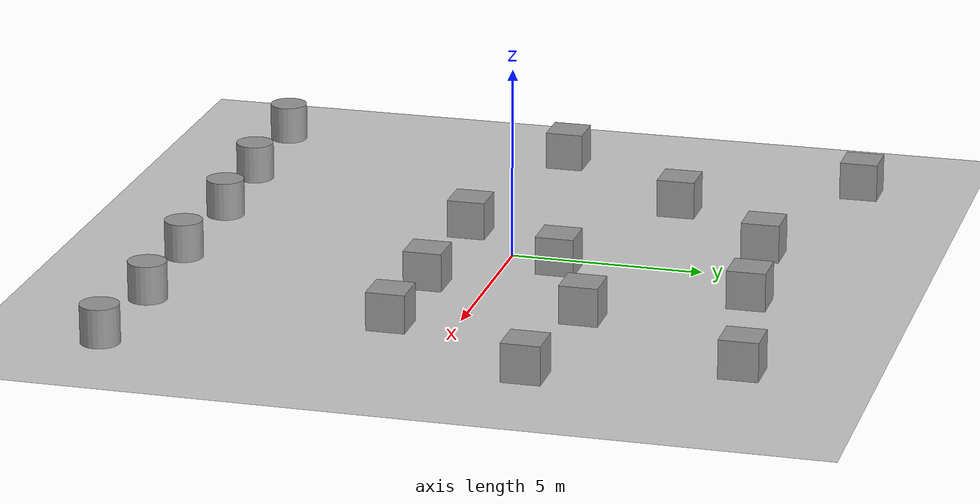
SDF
<sdf version="1.7">
 <world name="default">
  <light name="sun" type="directional">
   <pose>0 0 10 0 -0 0</pose>
   <diffuse>0.8 0.8 0.8 1</diffuse>
   <specular>0.2 0.2 0.2 1</specular>
   <attenuation>
    <range>1000</range>
    <constant>0.9</constant>
    <linear>0.01</linear>
    <quadratic>0.001</quadratic>
   </attenuation>
   <direction>-0.5 0.1 -0.9</direction>
   <spot><inner_angle>0</inner_angle><outer_angle>0</outer_angle><falloff>0</falloff></spot>
  </light>
  <model name="ground_plane">
   <static>1</static>
   <link name="link">
    <collision name="collision">
     <geometry><plane><normal>0 0 1</normal><size>100 100</size></plane></geometry>
     <surface>
      <contact><collide_bitmask>65535</collide_bitmask></contact>
      <friction><ode><mu>100</mu><mu2>50</mu2></ode></friction>
     </surface>
    </collision>
    <visual name="visual">
     <cast_shadows>0</cast_shadows>
     <geometry><plane><normal>0 0 1</normal><size>100 100</size></plane></geometry>
     <material>
      <script><uri>file://media/materials/scripts/gazebo.material</uri><name>Gazebo/Grey</name></script>
     </material>
    </visual>
   </link>
  </model>
  <gravity>0 0 -9.8</gravity>
  <magnetic_field>6e-06 2.3e-05 -4.2e-05</magnetic_field>
  <atmosphere type="adiabatic"/>
  <physics type="ode">
   <max_step_size>0.001</max_step_size>
   <real_time_factor>1</real_time_factor>
   <real_time_update_rate>1000</real_time_update_rate>
  </physics>
  <scene><ambient>0.4 0.4 0.4 1</ambient><background>0.7 0.7 0.7 1</background><shadows>1</shadows></scene>
  <spherical_coordinates>
   <surface_model>EARTH_WGS84</surface_model>
   <latitude_deg>0</latitude_deg>
   <longitude_deg>0</longitude_deg>
   <elevation>0</elevation>
   <heading_deg>0</heading_deg>
  </spherical_coordinates>
  <model name="unit_box">
   <pose>-1.46637 -1.51856 0.499995 -1e-05 -0 -0</pose>
   <link name="link">
    <inertial>
     <mass>1</mass>
     <inertia>
      <ixx>0.166667</ixx>
      <ixy>0</ixy>
      <ixz>0</ixz>
      <iyy>0.166667</iyy>
      <iyz>0</iyz>
      <izz>0.166667</izz>
     </inertia>
    </inertial>
    <collision name="collision"><geometry><box><size>1 1 1</size></box></geometry></collision>
    <visual name="visual">
     <geometry><box><size>1 1 1</size></box></geometry>
     <material>
      <script><name>Gazebo/Grey</name><uri>file://media/materials/scripts/gazebo.material</uri></script>
     </material>
    </visual>
   </link>
  </model>
  <model name="unit_box_0">
   <pose>2.6275 -1.53648 0.499995 0 1e-05 0</pose>
   <link name="link">
    <inertial>
     <mass>1</mass>
     <inertia>
      <ixx>0.166667</ixx>
      <ixy>0</ixy>
      <ixz>0</ixz>
      <iyy>0.166667</iyy>
      <iyz>0</iyz>
      <izz>0.166667</izz>
     </inertia>
    </inertial>
    <collision name="collision"><geometry><box><size>1 1 1</size></box></geometry></collision>
    <visual name="visual">
     <geometry><box><size>1 1 1</size></box></geometry>
     <material>
      <script><name>Gazebo/Grey</name><uri>file://media/materials/scripts/gazebo.material</uri></script>
     </material>
    </visual>
   </link>
  </model>
  <model name="unit_box_1">
   <pose>5.75391 -1.59614 0.499995 -1e-05 -0 -0</pose>
   <link name="link">
    <inertial>
     <mass>1</mass>
     <inertia>
      <ixx>0.166667</ixx>
      <ixy>0</ixy>
      <ixz>0</ixz>
      <iyy>0.166667</iyy>
      <iyz>0</iyz>
      <izz>0.166667</izz>
     </inertia>
    </inertial>
    <collision name="collision"><geometry><box><size>1 1 1</size></box></geometry></collision>
    <visual name="visual">
     <geometry><box><size>1 1 1</size></box></geometry>
     <material>
      <script><name>Gazebo/Grey</name><uri>file://media/materials/scripts/gazebo.material</uri></script>
     </material>
    </visual>
   </link>
  </model>
  <model name="unit_box_2">
   <pose>4.0762 2.8707 0.499995 0 1e-05 0</pose>
   <link name="link">
    <inertial>
     <mass>1</mass>
     <inertia>
      <ixx>0.166667</ixx>
      <ixy>0</ixy>
      <ixz>0</ixz>
      <iyy>0.166667</iyy>
      <iyz>0</iyz>
      <izz>0.166667</izz>
     </inertia>
    </inertial>
    <collision name="collision"><geometry><box><size>1 1 1</size></box></geometry></collision>
    <visual name="visual">
     <geometry><box><size>1 1 1</size></box></geometry>
     <material>
      <script><name>Gazebo/Grey</name><uri>file://media/materials/scripts/gazebo.material</uri></script>
     </material>
    </visual>
   </link>
  </model>
  <model name="unit_box_3">
   <pose>0.725458 1.40939 0.499995 -1e-05 -0 -0</pose>
   <link name="link">
    <inertial>
     <mass>1</mass>
     <inertia>
      <ixx>0.166667</ixx>
      <ixy>0</ixy>
      <ixz>0</ixz>
      <iyy>0.166667</iyy>
      <iyz>0</iyz>
      <izz>0.166667</izz>
     </inertia>
    </inertial>
    <collision name="collision"><geometry><box><size>1 1 1</size></box></geometry></collision>
    <visual name="visual">
     <geometry><box><size>1 1 1</size></box></geometry>
     <material>
      <script><name>Gazebo/Grey</name><uri>file://media/materials/scripts/gazebo.material</uri></script>
     </material>
    </visual>
   </link>
  </model>
  <model name="unit_box_4">
   <pose>1.94965 6.64006 0.499995 0 1e-05 0</pose>
   <link name="link">
    <inertial>
     <mass>1</mass>
     <inertia>
      <ixx>0.166667</ixx>
      <ixy>0</ixy>
      <ixz>0</ixz>
      <iyy>0.166667</iyy>
      <iyz>0</iyz>
      <izz>0.166667</izz>
     </inertia>
    </inertial>
    <collision name="collision"><geometry><box><size>1 1 1</size></box></geometry></collision>
    <visual name="visual">
     <geometry><box><size>1 1 1</size></box></geometry>
     <material>
      <script><name>Gazebo/Grey</name><uri>file://media/materials/scripts/gazebo.material</uri></script>
     </material>
    </visual>
   </link>
  </model>
  <model name="unit_box_5">
   <pose>-1.68824 6.23975 0.499995 -1e-05 -0 -0</pose>
   <link name="link">
    <inertial>
     <mass>1</mass>
     <inertia>
      <ixx>0.166667</ixx>
      <ixy>0</ixy>
      <ixz>0</ixz>
      <iyy>0.166667</iyy>
      <iyz>0</iyz>
      <izz>0.166667</izz>
     </inertia>
    </inertial>
    <collision name="collision"><geometry><box><size>1 1 1</size></box></geometry></collision>
    <visual name="visual">
     <geometry><box><size>1 1 1</size></box></geometry>
     <material>
      <script><name>Gazebo/Grey</name><uri>file://media/materials/scripts/gazebo.material</uri></script>
     </material>
    </visual>
   </link>
  </model>
  <model name="unit_box_6">
   <pose>-4.48979 3.38439 0.499995 0 1e-05 0</pose>
   <link name="link">
    <inertial>
     <mass>1</mass>
     <inertia>
      <ixx>0.166667</ixx>
      <ixy>0</ixy>
      <ixz>0</ixz>
      <iyy>0.166667</iyy>
      <iyz>0</iyz>
      <izz>0.166667</izz>
     </inertia>
    </inertial>
    <collision name="collision"><geometry><box><size>1 1 1</size></box></geometry></collision>
    <visual name="visual">
     <geometry><box><size>1 1 1</size></box></geometry>
     <material>
      <script><name>Gazebo/Grey</name><uri>file://media/materials/scripts/gazebo.material</uri></script>
     </material>
    </visual>
   </link>
  </model>
  <model name="unit_box_7">
   <pose>6.75518 7.47593 0.499995 -1e-05 -0 -0</pose>
   <link name="link">
    <inertial>
     <mass>1</mass>
     <inertia>
      <ixx>0.166667</ixx>
      <ixy>0</ixy>
      <ixz>0</ixz>
      <iyy>0.166667</iyy>
      <iyz>0</iyz>
      <izz>0.166667</izz>
     </inertia>
    </inertial>
    <collision name="collision"><geometry><box><size>1 1 1</size></box></geometry></collision>
    <visual name="visual">
     <geometry><box><size>1 1 1</size></box></geometry>
     <material>
      <script><name>Gazebo/Grey</name><uri>file://media/materials/scripts/gazebo.material</uri></script>
     </material>
    </visual>
   </link>
  </model>
  <model name="unit_box_8">
   <pose>-7.14757 7.77737 0.499995 0 1e-05 0</pose>
   <link name="link">
    <inertial>
     <mass>1</mass>
     <inertia>
      <ixx>0.166667</ixx>
      <ixy>0</ixy>
      <ixz>0</ixz>
      <iyy>0.166667</iyy>
      <iyz>0</iyz>
      <izz>0.166667</izz>
     </inertia>
    </inertial>
    <collision name="collision"><geometry><box><size>1 1 1</size></box></geometry></collision>
    <visual name="visual">
     <geometry><box><size>1 1 1</size></box></geometry>
     <material>
      <script><name>Gazebo/Grey</name><uri>file://media/materials/scripts/gazebo.material</uri></script>
     </material>
    </visual>
   </link>
  </model>
  <model name="unit_box_9">
   <pose>-7.62025 -0.432659 0.499995 -1e-05 -0 -0</pose>
   <link name="link">
    <inertial>
     <mass>1</mass>
     <inertia>
      <ixx>0.166667</ixx>
      <ixy>0</ixy>
      <ixz>0</ixz>
      <iyy>0.166667</iyy>
      <iyz>0</iyz>
      <izz>0.166667</izz>
     </inertia>
    </inertial>
    <collision name="collision"><geometry><box><size>1 1 1</size></box></geometry></collision>
    <visual name="visual">
     <geometry><box><size>1 1 1</size></box></geometry>
     <material>
      <script><name>Gazebo/Grey</name><uri>file://media/materials/scripts/gazebo.material</uri></script>
     </material>
    </visual>
   </link>
  </model>
  <model name="unit_box_10">
   <pose>8.30859 2.50597 0.499995 0 1e-05 0</pose>
   <link name="link">
    <inertial>
     <mass>1</mass>
     <inertia>
      <ixx>0.166667</ixx>
      <ixy>0</ixy>
      <ixz>0</ixz>
      <iyy>0.166667</iyy>
      <iyz>0</iyz>
      <izz>0.166667</izz>
     </inertia>
    </inertial>
    <collision name="collision"><geometry><box><size>1 1 1</size></box></geometry></collision>
    <visual name="visual">
     <geometry><box><size>1 1 1</size></box></geometry>
     <material>
      <script><name>Gazebo/Grey</name><uri>file://media/materials/scripts/gazebo.material</uri></script>
     </material>
    </visual>
   </link>
  </model>
  <model name="unit_cylinder">
   <pose>8.68314 -8.13277 0.499992 -3e-06 4e-06 0</pose>
   <link name="link">
    <inertial>
     <mass>1</mass>
     <inertia><ixx>0.145833</ixx><ixy>0</ixy><ixz>0</ixz><iyy>0.145833</iyy><iyz>0</iyz><izz>0.125</izz></inertia>
    </inertial>
    <collision name="collision">
     <geometry><cylinder><radius>0.5</radius><length>1</length></cylinder></geometry>
    </collision>
    <visual name="visual">
     <geometry><cylinder><radius>0.5</radius><length>1</length></cylinder></geometry>
     <material>
      <script><name>Gazebo/Grey</name><uri>file://media/materials/scripts/gazebo.material</uri></script>
     </material>
    </visual>
   </link>
  </model>
  <model name="unit_cylinder_0">
   <pose>5.45981 -8.02351 0.499992 -3e-06 -4e-06 -0</pose>
   <link name="link">
    <inertial>
     <mass>1</mass>
     <inertia><ixx>0.145833</ixx><ixy>0</ixy><ixz>0</ixz><iyy>0.145833</iyy><iyz>0</iyz><izz>0.125</izz></inertia>
    </inertial>
    <collision name="collision">
     <geometry><cylinder><radius>0.5</radius><length>1</length></cylinder></geometry>
    </collision>
    <visual name="visual">
     <geometry><cylinder><radius>0.5</radius><length>1</length></cylinder></geometry>
     <material>
      <script><name>Gazebo/Grey</name><uri>file://media/materials/scripts/gazebo.material</uri></script>
     </material>
    </visual>
   </link>
  </model>
  <model name="unit_cylinder_1">
   <pose>2.22546 -8.15731 0.499993 -3e-06 -3e-06 0</pose>
   <link name="link">
    <inertial>
     <mass>1</mass>
     <inertia><ixx>0.145833</ixx><ixy>0</ixy><ixz>0</ixz><iyy>0.145833</iyy><iyz>0</iyz><izz>0.125</izz></inertia>
    </inertial>
    <collision name="collision">
     <geometry><cylinder><radius>0.5</radius><length>1</length></cylinder></geometry>
    </collision>
    <visual name="visual">
     <geometry><cylinder><radius>0.5</radius><length>1</length></cylinder></geometry>
     <material>
      <script><name>Gazebo/Grey</name><uri>file://media/materials/scripts/gazebo.material</uri></script>
     </material>
    </visual>
   </link>
  </model>
  <model name="unit_cylinder_2">
   <pose>-1.19645 -8.15901 0.499997 3e-06 4e-06 -0</pose>
   <link name="link">
    <inertial>
     <mass>1</mass>
     <inertia><ixx>0.145833</ixx><ixy>0</ixy><ixz>0</ixz><iyy>0.145833</iyy><iyz>0</iyz><izz>0.125</izz></inertia>
    </inertial>
    <collision name="collision">
     <geometry><cylinder><radius>0.5</radius><length>1</length></cylinder></geometry>
    </collision>
    <visual name="visual">
     <geometry><cylinder><radius>0.5</radius><length>1</length></cylinder></geometry>
     <material>
      <script><name>Gazebo/Grey</name><uri>file://media/materials/scripts/gazebo.material</uri></script>
     </material>
    </visual>
   </link>
  </model>
  <model name="unit_cylinder_3">
   <pose>-4.3232 -8.34106 0.499993 -3e-06 -4e-06 -0</pose>
   <link name="link">
    <inertial>
     <mass>1</mass>
     <inertia><ixx>0.145833</ixx><ixy>0</ixy><ixz>0</ixz><iyy>0.145833</iyy><iyz>0</iyz><izz>0.125</izz></inertia>
    </inertial>
    <collision name="collision">
     <geometry><cylinder><radius>0.5</radius><length>1</length></cylinder></geometry>
    </collision>
    <visual name="visual">
     <geometry><cylinder><radius>0.5</radius><length>1</length></cylinder></geometry>
     <material>
      <script><name>Gazebo/Grey</name><uri>file://media/materials/scripts/gazebo.material</uri></script>
     </material>
    </visual>
   </link>
  </model>
  <model name="unit_cylinder_4">
   <pose>-7.85246 -8.49145 0.499997 3e-06 4e-06 -0</pose>
   <link name="link">
    <inertial>
     <mass>1</mass>
     <inertia><ixx>0.145833</ixx><ixy>0</ixy><ixz>0</ixz><iyy>0.145833</iyy><iyz>0</iyz><izz>0.125</izz></inertia>
    </inertial>
    <collision name="collision">
     <geometry><cylinder><radius>0.5</radius><length>1</length></cylinder></geometry>
    </collision>
    <visual name="visual">
     <geometry><cylinder><radius>0.5</radius><length>1</length></cylinder></geometry>
     <material>
      <script><name>Gazebo/Grey</name><uri>file://media/materials/scripts/gazebo.material</uri></script>
     </material>
    </visual>
   </link>
  </model>
 </world>
</sdf>
